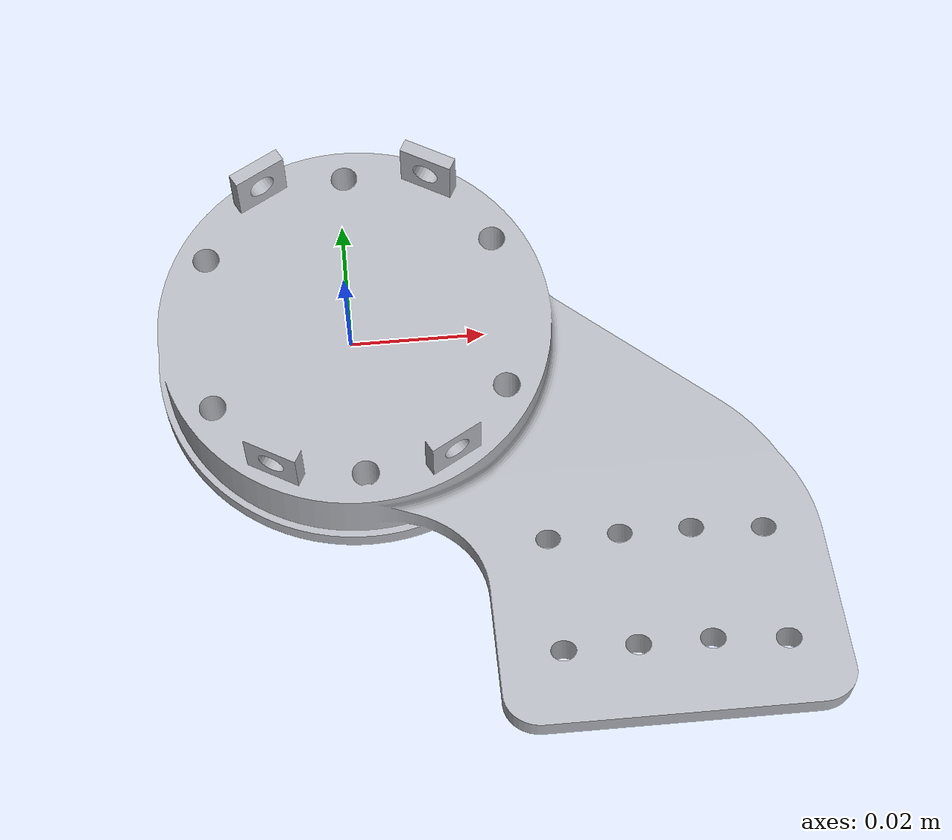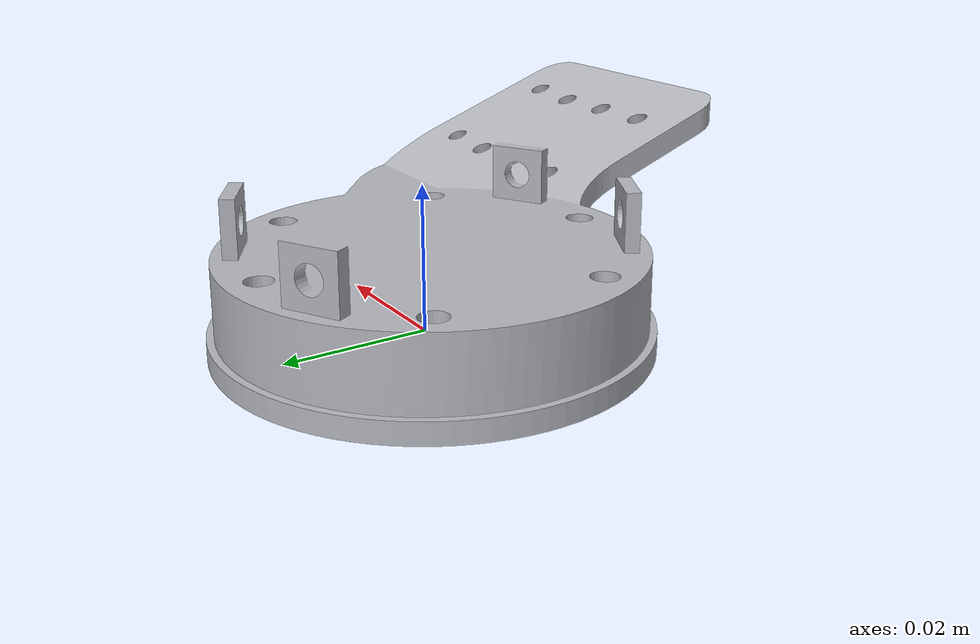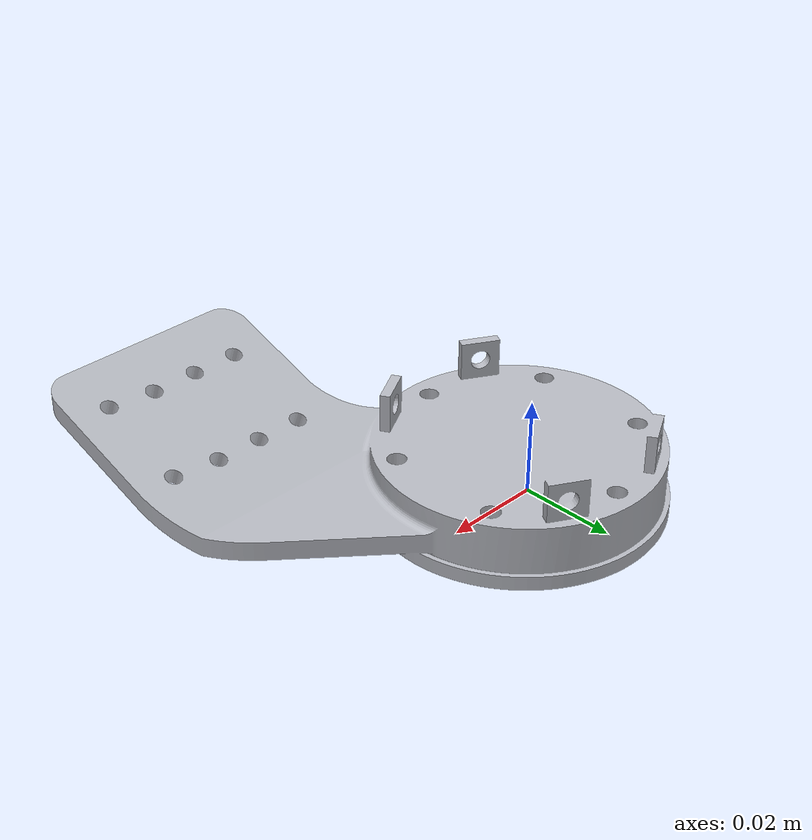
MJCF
<mujoco model="slanted_final_right_mount">
  <compiler angle="radian"/>

  <default>
    <default class="visual">
      <geom type="mesh" group="2" contype="0" conaffinity="0" density="0"/>
    </default>
    <default class="collision">
      <geom type="mesh" group="3" contype="1" conaffinity="1" solref="0.002 1" solimp="0.999 0.999 0.001"/>
    </default>
  </default>

  <asset>
    <mesh name="slanted_final_right_mount" file="slanted_final_right_mount.stl"/>
  </asset>

  <worldbody>
    <body name="slanted_final_right_mount">
      <freejoint/>
      <geom name="slanted_final_right_mount_visual" mesh="slanted_final_right_mount" class="visual" rgba="0.72 0.73 0.76 1"/>
      <geom name="slanted_final_right_mount_collision" mesh="slanted_final_right_mount" class="collision" rgba="0.72 0.73 0.76 0.35"/>
    </body>
  </worldbody>
</mujoco>
